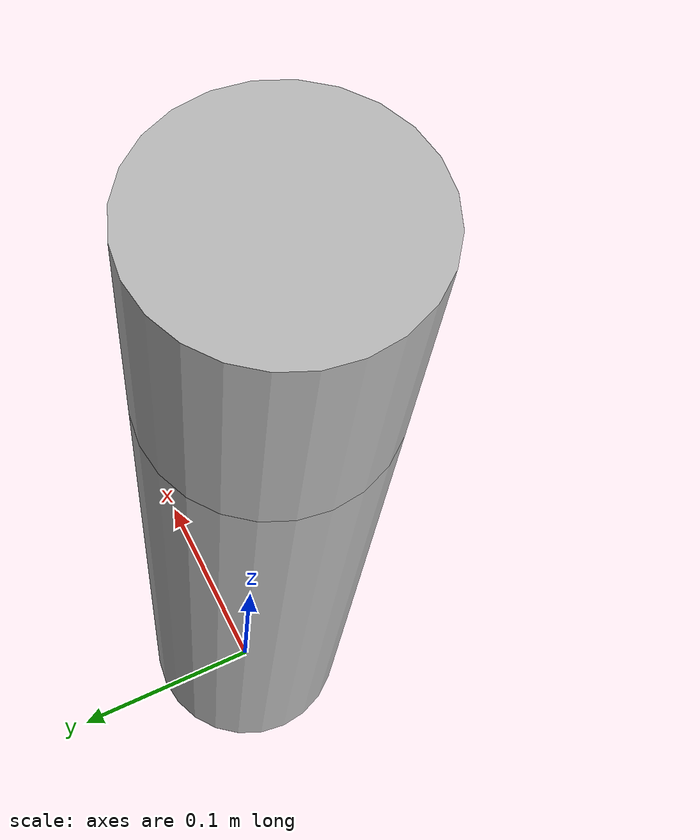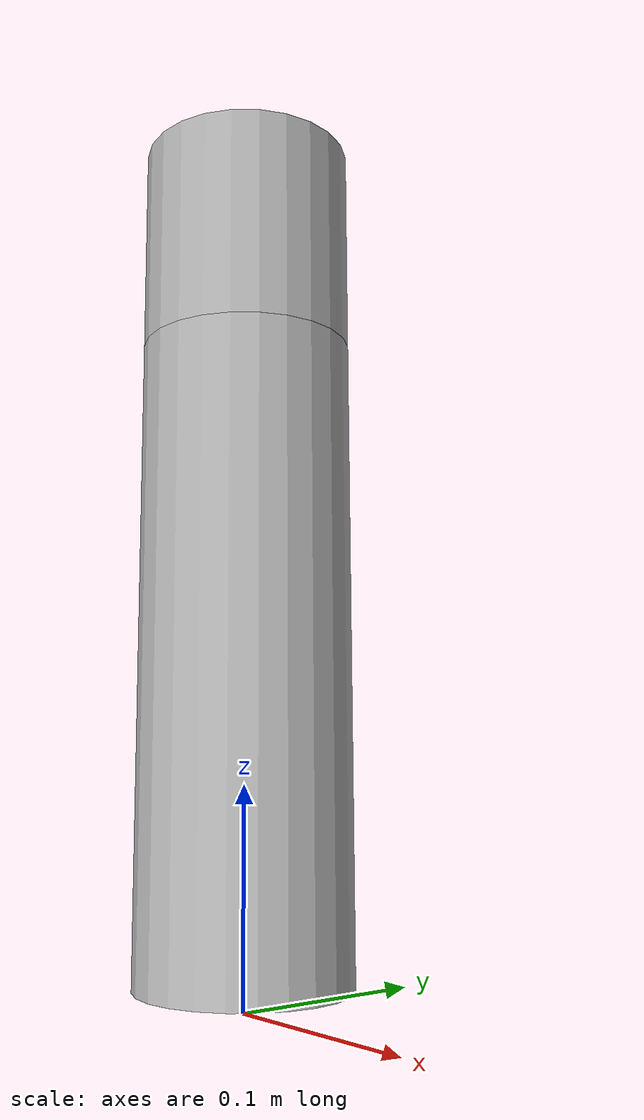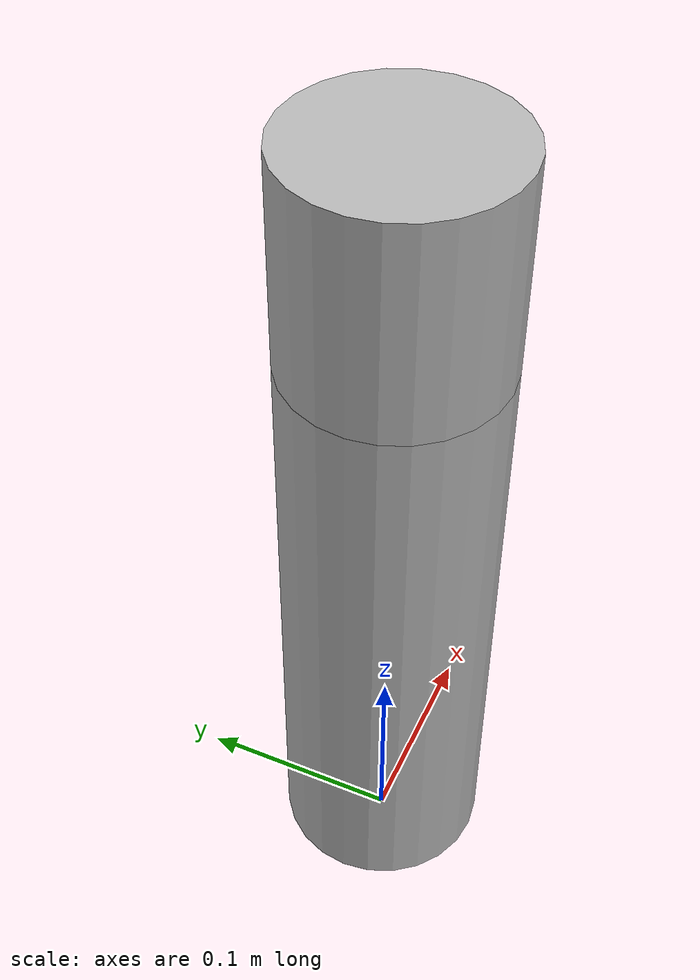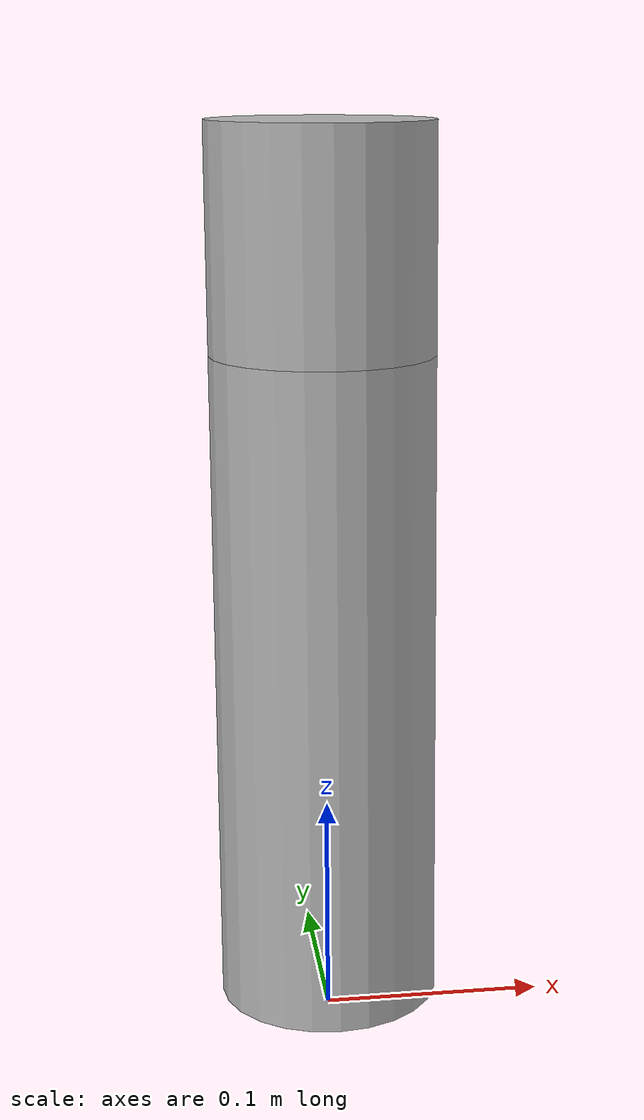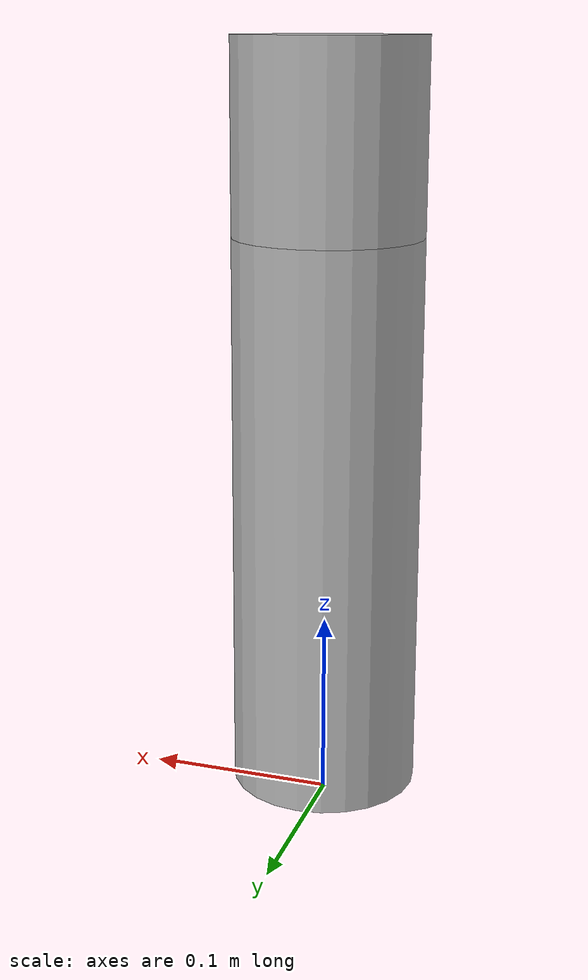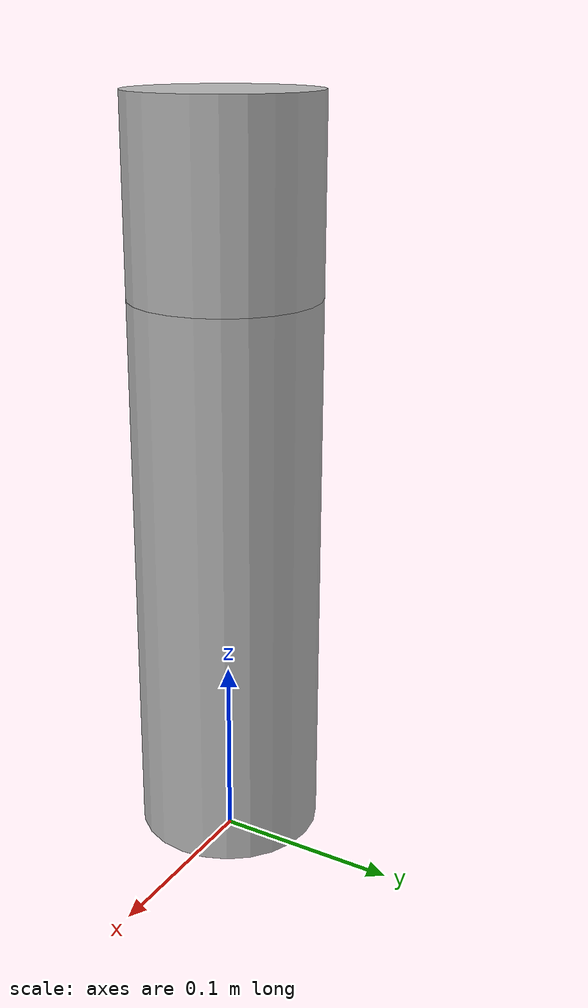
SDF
<sdf version='1.6'>
  <model name='equipment'>

    <plugin name='equipment' filename='libBatteryPlugin.so'>
    </plugin>

    <pose frame=''>0 0 0.21 0 0 0</pose>
    <link name='battery'>
      <gravity>0</gravity>
      <pose frame=''>0 0 0 0 0 0</pose>
      <sensor name='contact_sensor' type='contact'>
        <contact>
          <collision>battery</collision>
          <topic>__default_topic__</topic>
        </contact>
      </sensor>

      <collision name='battery'>
        <geometry>
          <cylinder>
            <radius>0.05</radius>
            <length>0.4</length>
          </cylinder>
        </geometry>
      </collision>

      <visual name='body'>
        <pose frame=''>0 0 -0.05 0 -0 0</pose>
        <geometry>
          <cylinder>
              <radius>0.05</radius>
              <length>0.3</length>
          </cylinder>
        </geometry>
        <material>
          <script>
            <uri>model://battery/materials/scripts/</uri>
            <name>Battery/Body</name>
          </script>
        </material>
      </visual>

      <visual name='head'>
        <pose frame=''>0 0 0.15 0 -0 0</pose>
        <geometry>
          <cylinder>
              <radius>0.05</radius>
              <length>0.1</length>
          </cylinder>
        </geometry>
        <material>
          <script>
            <uri>model://battery/materials/scripts/</uri>
            <name>Battery/Head</name>
          </script>
        </material>
      </visual>
    </link>
  </model>
</sdf>
